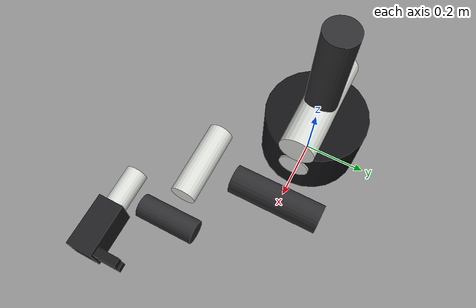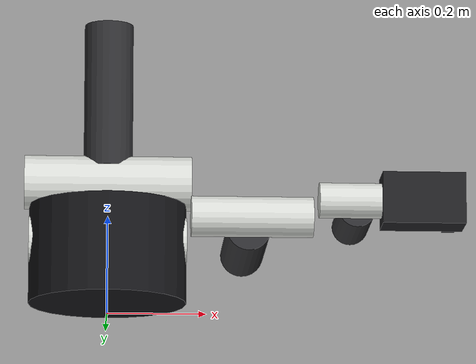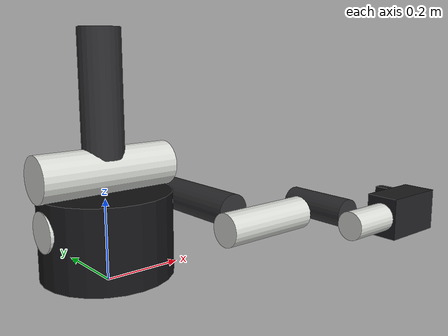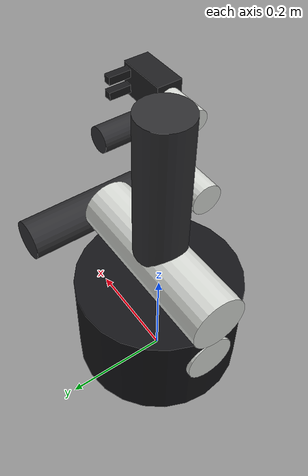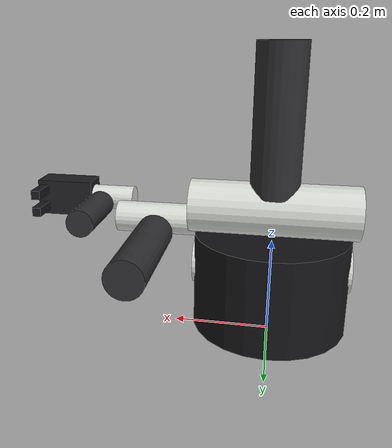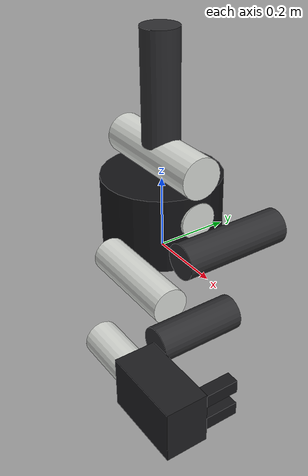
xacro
<?xml version="1.0"?>
<robot name="tiny_panda" xmlns:xacro="http://www.ros.org/wiki/xacro">
  <xacro:arg name="controllers_file" default="$(find tiny_inference_ros)/config/panda_gazebo_controllers.yaml"/>

  <xacro:property name="pi" value="3.141592653589793"/>

  <xacro:macro name="simple_inertial" params="mass ixx iyy izz">
    <inertial>
      <origin xyz="0 0 0" rpy="0 0 0"/>
      <mass value="${mass}"/>
      <inertia ixx="${ixx}" ixy="0" ixz="0" iyy="${iyy}" iyz="0" izz="${izz}"/>
    </inertial>
  </xacro:macro>

  <xacro:macro name="box_link" params="name size color mass">
    <link name="${name}">
      <visual>
        <origin xyz="0 0 0" rpy="0 0 0"/>
        <geometry>
          <box size="${size}"/>
        </geometry>
        <material name="${name}_mat">
          <color rgba="${color}"/>
        </material>
      </visual>
      <collision>
        <origin xyz="0 0 0" rpy="0 0 0"/>
        <geometry>
          <box size="${size}"/>
        </geometry>
      </collision>
      <xacro:simple_inertial mass="${mass}" ixx="0.02" iyy="0.02" izz="0.02"/>
    </link>
  </xacro:macro>

  <xacro:macro name="cylinder_link" params="name radius length color mass">
    <link name="${name}">
      <visual>
        <origin xyz="0 0 0" rpy="0 ${pi / 2.0} 0"/>
        <geometry>
          <cylinder radius="${radius}" length="${length}"/>
        </geometry>
        <material name="${name}_mat">
          <color rgba="${color}"/>
        </material>
      </visual>
      <collision>
        <origin xyz="0 0 0" rpy="0 ${pi / 2.0} 0"/>
        <geometry>
          <cylinder radius="${radius}" length="${length}"/>
        </geometry>
      </collision>
      <xacro:simple_inertial mass="${mass}" ixx="0.03" iyy="0.03" izz="0.03"/>
    </link>
  </xacro:macro>

  <link name="world"/>

  <link name="panda_link0">
    <visual>
      <origin xyz="0 0 0.10" rpy="0 0 0"/>
      <geometry>
        <cylinder radius="0.16" length="0.20"/>
      </geometry>
      <material name="panda_dark">
        <color rgba="0.08 0.08 0.09 1"/>
      </material>
    </visual>
    <collision>
      <origin xyz="0 0 0.10" rpy="0 0 0"/>
      <geometry>
        <cylinder radius="0.16" length="0.20"/>
      </geometry>
    </collision>
    <xacro:simple_inertial mass="4.0" ixx="0.08" iyy="0.08" izz="0.08"/>
  </link>

  <joint name="world_to_panda_base" type="fixed">
    <parent link="world"/>
    <child link="panda_link0"/>
    <origin xyz="0 0 0.02" rpy="0 0 0"/>
  </joint>

  <xacro:cylinder_link name="panda_link1" radius="0.055" length="0.34" color="0.85 0.86 0.84 1" mass="2.0"/>
  <xacro:cylinder_link name="panda_link2" radius="0.050" length="0.30" color="0.18 0.18 0.19 1" mass="2.0"/>
  <xacro:cylinder_link name="panda_link3" radius="0.048" length="0.32" color="0.85 0.86 0.84 1" mass="1.6"/>
  <xacro:cylinder_link name="panda_link4" radius="0.044" length="0.28" color="0.18 0.18 0.19 1" mass="1.4"/>
  <xacro:cylinder_link name="panda_link5" radius="0.040" length="0.24" color="0.85 0.86 0.84 1" mass="1.2"/>
  <xacro:cylinder_link name="panda_link6" radius="0.036" length="0.18" color="0.18 0.18 0.19 1" mass="1.0"/>
  <xacro:cylinder_link name="panda_link7" radius="0.034" length="0.16" color="0.85 0.86 0.84 1" mass="0.8"/>
  <xacro:box_link name="panda_hand" size="0.16 0.10 0.08" color="0.12 0.12 0.13 1" mass="0.6"/>
  <xacro:box_link name="panda_leftfinger" size="0.025 0.025 0.10" color="0.10 0.10 0.11 1" mass="0.1"/>
  <xacro:box_link name="panda_rightfinger" size="0.025 0.025 0.10" color="0.10 0.10 0.11 1" mass="0.1"/>

  <joint name="panda_joint1" type="revolute">
    <parent link="panda_link0"/>
    <child link="panda_link1"/>
    <origin xyz="0 0 0.25" rpy="0 0 0"/>
    <axis xyz="0 0 1"/>
    <limit lower="-2.8973" upper="2.8973" effort="80" velocity="2.0"/>
    <dynamics damping="1.0" friction="0.2"/>
  </joint>

  <joint name="panda_joint2" type="revolute">
    <parent link="panda_link1"/>
    <child link="panda_link2"/>
    <origin xyz="0 0 0.18" rpy="0 ${pi / 2.0} 0"/>
    <axis xyz="0 0 1"/>
    <limit lower="-1.7628" upper="1.7628" effort="80" velocity="2.0"/>
    <dynamics damping="1.0" friction="0.2"/>
  </joint>

  <joint name="panda_joint3" type="revolute">
    <parent link="panda_link2"/>
    <child link="panda_link3"/>
    <origin xyz="0.30 0 0" rpy="0 ${-pi / 2.0} 0"/>
    <axis xyz="0 0 1"/>
    <limit lower="-2.8973" upper="2.8973" effort="80" velocity="2.0"/>
    <dynamics damping="1.0" friction="0.2"/>
  </joint>

  <joint name="panda_joint4" type="revolute">
    <parent link="panda_link3"/>
    <child link="panda_link4"/>
    <origin xyz="0.28 0 0" rpy="0 ${-pi / 2.0} 0"/>
    <axis xyz="0 0 1"/>
    <limit lower="-3.0718" upper="-0.0698" effort="80" velocity="2.0"/>
    <dynamics damping="1.0" friction="0.2"/>
  </joint>

  <joint name="panda_joint5" type="revolute">
    <parent link="panda_link4"/>
    <child link="panda_link5"/>
    <origin xyz="0.25 0 0" rpy="0 ${pi / 2.0} 0"/>
    <axis xyz="0 0 1"/>
    <limit lower="-2.8973" upper="2.8973" effort="20" velocity="2.5"/>
    <dynamics damping="0.6" friction="0.1"/>
  </joint>

  <joint name="panda_joint6" type="revolute">
    <parent link="panda_link5"/>
    <child link="panda_link6"/>
    <origin xyz="0.20 0 0" rpy="0 ${-pi / 2.0} 0"/>
    <axis xyz="0 0 1"/>
    <limit lower="-0.0175" upper="3.7525" effort="20" velocity="2.5"/>
    <dynamics damping="0.6" friction="0.1"/>
  </joint>

  <joint name="panda_joint7" type="revolute">
    <parent link="panda_link6"/>
    <child link="panda_link7"/>
    <origin xyz="0.16 0 0" rpy="0 ${pi / 2.0} 0"/>
    <axis xyz="0 0 1"/>
    <limit lower="-2.8973" upper="2.8973" effort="20" velocity="2.5"/>
    <dynamics damping="0.4" friction="0.1"/>
  </joint>

  <joint name="panda_hand_joint" type="fixed">
    <parent link="panda_link7"/>
    <child link="panda_hand"/>
    <origin xyz="0.12 0 0" rpy="0 0 0"/>
  </joint>

  <joint name="panda_finger_joint1" type="prismatic">
    <parent link="panda_hand"/>
    <child link="panda_leftfinger"/>
    <origin xyz="0.06 0.025 -0.06" rpy="0 0 0"/>
    <axis xyz="0 1 0"/>
    <limit lower="0.0" upper="0.04" effort="10" velocity="0.2"/>
    <dynamics damping="0.2" friction="0.05"/>
  </joint>

  <joint name="panda_finger_joint2" type="prismatic">
    <parent link="panda_hand"/>
    <child link="panda_rightfinger"/>
    <origin xyz="0.06 -0.025 -0.06" rpy="0 0 0"/>
    <axis xyz="0 -1 0"/>
    <limit lower="0.0" upper="0.04" effort="10" velocity="0.2"/>
    <dynamics damping="0.2" friction="0.05"/>
  </joint>

  <ros2_control name="GazeboSimSystem" type="system">
    <hardware>
      <plugin>gz_ros2_control/GazeboSimSystem</plugin>
    </hardware>

    <joint name="panda_joint1">
      <command_interface name="position"/>
      <state_interface name="position"/>
      <state_interface name="velocity"/>
    </joint>
    <joint name="panda_joint2">
      <command_interface name="position"/>
      <state_interface name="position"/>
      <state_interface name="velocity"/>
    </joint>
    <joint name="panda_joint3">
      <command_interface name="position"/>
      <state_interface name="position"/>
      <state_interface name="velocity"/>
    </joint>
    <joint name="panda_joint4">
      <command_interface name="position"/>
      <state_interface name="position"/>
      <state_interface name="velocity"/>
    </joint>
    <joint name="panda_joint5">
      <command_interface name="position"/>
      <state_interface name="position"/>
      <state_interface name="velocity"/>
    </joint>
    <joint name="panda_joint6">
      <command_interface name="position"/>
      <state_interface name="position"/>
      <state_interface name="velocity"/>
    </joint>
    <joint name="panda_joint7">
      <command_interface name="position"/>
      <state_interface name="position"/>
      <state_interface name="velocity"/>
    </joint>
    <joint name="panda_finger_joint1">
      <command_interface name="position"/>
      <state_interface name="position"/>
      <state_interface name="velocity"/>
    </joint>
    <joint name="panda_finger_joint2">
      <command_interface name="position"/>
      <state_interface name="position"/>
      <state_interface name="velocity"/>
    </joint>
  </ros2_control>

  <gazebo>
    <plugin filename="libgz_ros2_control-system.so" name="gz_ros2_control::GazeboSimROS2ControlPlugin">
      <parameters>$(arg controllers_file)</parameters>
    </plugin>
  </gazebo>
</robot>
